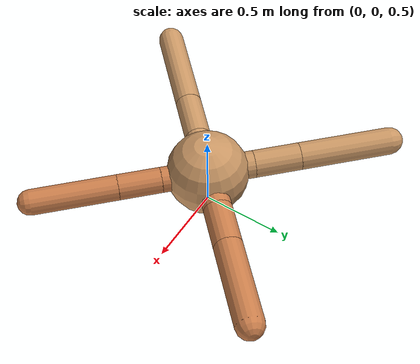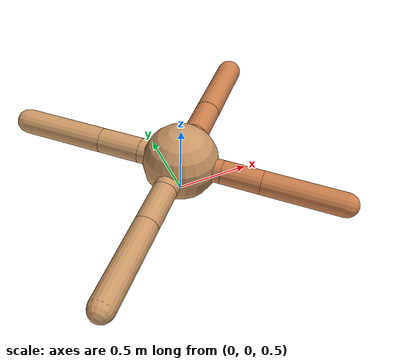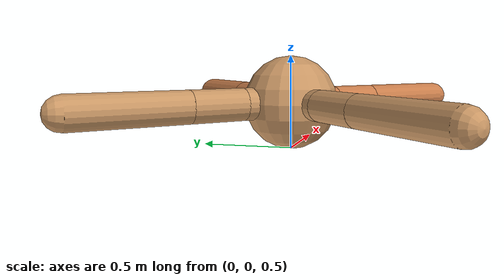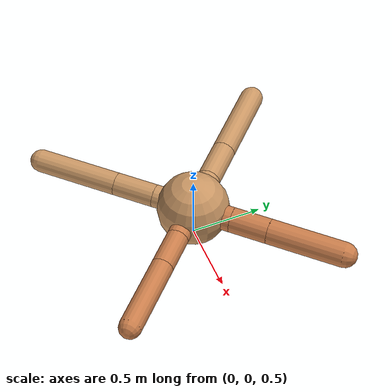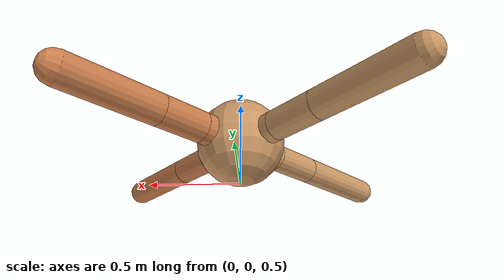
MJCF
<?xml version="1.0" ?>
<mujoco model="ant">

	<compiler angle="degree" coordinate="local" inertiafromgeom="true"/>

	<option integrator="RK4" timestep="0.01"/>

	<custom>

		<numeric data="0.0 0.0 0.55 1.0 0.0 0.0 0.0 0.0 1.0 0.0 -1.0 0.0 -1.0 0.0 1.0" name="init_qpos"/>

	</custom>

	<default>

		<joint armature="1" damping="1" limited="true"/>

		<geom conaffinity="0" condim="3" density="5.0" friction="1.5 0.1 0.1" margin="0.01" rgba="0.8 0.6 0.4 1"/>

	</default>

	<worldbody>

		<body name="torso" pos="0 0 0.75">

			<geom name="torso_geom" pos="0 0 0" size="0.2502351941910548" type="sphere"/>

			<!--joint armature="0" damping="0" limited="false" margin="0.01" name="root" pos="0 0 0" type="free"/-->

			<body name="front_left_leg" pos="0 0 0">

				<geom fromto="0 0 0 0.2 0.2 0" name="aux_1_geom" size="0.08703304793379943" type="capsule" rgba=".8 .5 .3 1"/>

				<body name="aux_1" pos="0.2 0.2 0">

					<joint axis="0 0 1" name="hip_1" pos="0.0 0.0 0.0" range="-40 40" type="hinge"/>

					<geom fromto="0 0 0 0.18769946260818493 0.18769946260818493 0" name="left_leg_geom" size="0.08703304793379943" type="capsule" rgba=".8 .5 .3 1"/>

					<body pos="0.18769946260818493 0.18769946260818493 0" name="front_left_foot">

						<joint axis="-1 1 0" name="ankle_1" pos="0.0 0.0 0.0" range="30 100" type="hinge"/>

						<geom fromto="0 0 0 0.37539892521636986 0.37539892521636986 0" name="left_ankle_geom" size="0.08703304793379943" type="capsule" rgba=".8 .5 .3 1"/>

					</body>

				</body>

			</body>

			<body name="front_right_leg" pos="0 0 0">

				<geom fromto="0 0 0 -0.2 0.2 0" name="aux_2_geom" size="0.08379487801872557" type="capsule"/>

				<body name="aux_2" pos="-0.2 0.2 0">

					<joint axis="0 0 1" name="hip_2" pos="0.0 0.0 0.0" range="-40 40" type="hinge"/>

					<geom fromto="0 0 0 -0.20129943938007214 0.20129943938007214 0" name="right_leg_geom" size="0.08379487801872557" type="capsule"/>

					<body pos="-0.20129943938007214 0.20129943938007214 0" name="front_right_foot">

						<joint axis="1 1 0" name="ankle_2" pos="0.0 0.0 0.0" range="-100 -30" type="hinge"/>

						<geom fromto="0 0 0 -0.4025988787601443 0.4025988787601443 0" name="right_ankle_geom" size="0.08379487801872557" type="capsule"/>

					</body>

				</body>

			</body>

			<body name="left_back_leg" pos="0 0 0">

				<geom fromto="0 0 0 -0.2 -0.2 0" name="aux_3_geom" size="0.07963363417608277" type="capsule"/>

				<body name="aux_3" pos="-0.2 -0.2 0">

					<joint axis="0 0 1" name="hip_3" pos="0.0 0.0 0.0" range="-40 40" type="hinge"/>

					<geom fromto="0 0 0 -0.20433165787014637 -0.20433165787014637 0" name="back_leg_geom" size="0.07963363417608277" type="capsule"/>

					<body pos="-0.20433165787014637 -0.20433165787014637 0" name="left_back_foot">

						<joint axis="-1 1 0" name="ankle_3" pos="0.0 0.0 0.0" range="-100 -30" type="hinge"/>

						<geom fromto="0 0 0 -0.40866331574029274 -0.40866331574029274 0" name="third_ankle_geom" size="0.07963363417608277" type="capsule"/>

					</body>

				</body>

			</body>

			<body name="right_back_leg" pos="0 0 0">

				<geom fromto="0 0 0 0.2 -0.2 0" name="aux_4_geom" size="0.07770759936636291" type="capsule" rgba=".8 .5 .3 1"/>

				<body name="aux_4" pos="0.2 -0.2 0">

					<joint axis="0 0 1" name="hip_4" pos="0.0 0.0 0.0" range="-40 40" type="hinge"/>

					<geom fromto="0 0 0 0.18404131386795844 -0.18404131386795844 0" name="rightback_leg_geom" size="0.07770759936636291" type="capsule" rgba=".8 .5 .3 1"/>

					<body pos="0.18404131386795844 -0.18404131386795844 0" name="right_back_foot">

						<joint axis="1 1 0" name="ankle_4" pos="0.0 0.0 0.0" range="30 100" type="hinge"/>

						<geom fromto="0 0 0 0.3680826277359169 -0.3680826277359169 0" name="fourth_ankle_geom" size="0.07770759936636291" type="capsule" rgba=".8 .5 .3 1"/>

					</body>

				</body>

			</body>

		</body>

	</worldbody>

	<actuator>

		<motor ctrllimited="true" ctrlrange="-1.0 1.0" joint="hip_4" gear="150"/>

		<motor ctrllimited="true" ctrlrange="-1.0 1.0" joint="ankle_4" gear="150"/>

		<motor ctrllimited="true" ctrlrange="-1.0 1.0" joint="hip_1" gear="150"/>

		<motor ctrllimited="true" ctrlrange="-1.0 1.0" joint="ankle_1" gear="150"/>

		<motor ctrllimited="true" ctrlrange="-1.0 1.0" joint="hip_2" gear="150"/>

		<motor ctrllimited="true" ctrlrange="-1.0 1.0" joint="ankle_2" gear="150"/>

		<motor ctrllimited="true" ctrlrange="-1.0 1.0" joint="hip_3" gear="150"/>

		<motor ctrllimited="true" ctrlrange="-1.0 1.0" joint="ankle_3" gear="150"/>

	</actuator>

</mujoco>
